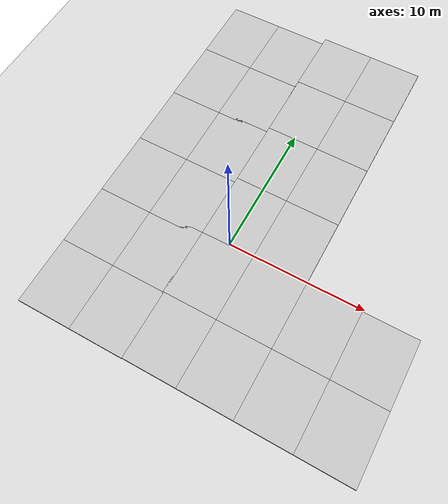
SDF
<sdf version="1.7">
 <world name="default">
  <model name="ground_plane">
   <static>1</static>
   <link name="link">
    <collision name="collision">
     <geometry><plane><normal>0 0 1</normal><size>100 100</size></plane></geometry>
     <surface><friction><ode><mu>100</mu><mu2>50</mu2></ode></friction></surface>
    </collision>
    <visual name="visual">
     <cast_shadows>0</cast_shadows>
     <geometry><plane><normal>0 0 1</normal><size>100 100</size></plane></geometry>
     <material>
      <script><uri>file://media/materials/scripts/gazebo.material</uri><name>Gazebo/Grey</name></script>
     </material>
    </visual>
   </link>
  </model>
  <model name="mud_box_0">
   <static>1</static>
   <link name="link">
    <collision name="collision"><geometry><box><size>8 10 0.2</size></box></geometry></collision>
    <visual name="visual_1">
     <pose>-2 2.5 0 0 -0 0</pose>
     <cast_shadows>0</cast_shadows>
     <geometry><box><size>4 5 0.2</size></box></geometry>
     <material>
      <script>
       <uri>model://mud_box/materials/scripts</uri>
       <uri>model://mud_box/materials/textures</uri>
       <name>vrc/mud</name>
      </script>
     </material>
    </visual>
    <visual name="visual_2">
     <pose>2 2.5 0 0 -0 0</pose>
     <cast_shadows>0</cast_shadows>
     <geometry><box><size>4 5 0.2</size></box></geometry>
     <material>
      <script>
       <uri>model://mud_box/materials/scripts</uri>
       <uri>model://mud_box/materials/textures</uri>
       <name>vrc/mud</name>
      </script>
     </material>
    </visual>
    <visual name="visual_3">
     <pose>2 -2.5 0 0 -0 0</pose>
     <cast_shadows>0</cast_shadows>
     <geometry><box><size>4 5 0.2</size></box></geometry>
     <material>
      <script>
       <uri>model://mud_box/materials/scripts</uri>
       <uri>model://mud_box/materials/textures</uri>
       <name>vrc/mud</name>
      </script>
     </material>
    </visual>
    <visual name="visual_4">
     <pose>-2 -2.5 0 0 -0 0</pose>
     <cast_shadows>0</cast_shadows>
     <geometry><box><size>4 5 0.2</size></box></geometry>
     <material>
      <script>
       <uri>model://mud_box/materials/scripts</uri>
       <uri>model://mud_box/materials/textures</uri>
       <name>vrc/mud</name>
      </script>
     </material>
    </visual>
   </link>
   <pose>1.86767 4.83104 0 0 -0 0</pose>
  </model>
  <model name="mud_box_2">
   <static>1</static>
   <link name="link">
    <collision name="collision"><geometry><box><size>8 10 0.2</size></box></geometry></collision>
    <visual name="visual_1">
     <pose>-2 2.5 0 0 -0 0</pose>
     <cast_shadows>0</cast_shadows>
     <geometry><box><size>4 5 0.2</size></box></geometry>
     <material>
      <script>
       <uri>model://mud_box/materials/scripts</uri>
       <uri>model://mud_box/materials/textures</uri>
       <name>vrc/mud</name>
      </script>
     </material>
    </visual>
    <visual name="visual_2">
     <pose>2 2.5 0 0 -0 0</pose>
     <cast_shadows>0</cast_shadows>
     <geometry><box><size>4 5 0.2</size></box></geometry>
     <material>
      <script>
       <uri>model://mud_box/materials/scripts</uri>
       <uri>model://mud_box/materials/textures</uri>
       <name>vrc/mud</name>
      </script>
     </material>
    </visual>
    <visual name="visual_3">
     <pose>2 -2.5 0 0 -0 0</pose>
     <cast_shadows>0</cast_shadows>
     <geometry><box><size>4 5 0.2</size></box></geometry>
     <material>
      <script>
       <uri>model://mud_box/materials/scripts</uri>
       <uri>model://mud_box/materials/textures</uri>
       <name>vrc/mud</name>
      </script>
     </material>
    </visual>
    <visual name="visual_4">
     <pose>-2 -2.5 0 0 -0 0</pose>
     <cast_shadows>0</cast_shadows>
     <geometry><box><size>4 5 0.2</size></box></geometry>
     <material>
      <script>
       <uri>model://mud_box/materials/scripts</uri>
       <uri>model://mud_box/materials/textures</uri>
       <name>vrc/mud</name>
      </script>
     </material>
    </visual>
   </link>
   <pose>1.85975 -5.14192 0 0 -0 0</pose>
  </model>
  <model name="mud_box_0_clone">
   <static>1</static>
   <link name="link">
    <collision name="collision"><geometry><box><size>8 10 0.2</size></box></geometry></collision>
    <visual name="visual_1">
     <pose>-2 2.5 0 0 -0 0</pose>
     <cast_shadows>0</cast_shadows>
     <geometry><box><size>4 5 0.2</size></box></geometry>
     <material>
      <script>
       <uri>model://mud_box/materials/scripts</uri>
       <uri>model://mud_box/materials/textures</uri>
       <name>vrc/mud</name>
      </script>
     </material>
    </visual>
    <visual name="visual_2">
     <pose>2 2.5 0 0 -0 0</pose>
     <cast_shadows>0</cast_shadows>
     <geometry><box><size>4 5 0.2</size></box></geometry>
     <material>
      <script>
       <uri>model://mud_box/materials/scripts</uri>
       <uri>model://mud_box/materials/textures</uri>
       <name>vrc/mud</name>
      </script>
     </material>
    </visual>
    <visual name="visual_3">
     <pose>2 -2.5 0 0 -0 0</pose>
     <cast_shadows>0</cast_shadows>
     <geometry><box><size>4 5 0.2</size></box></geometry>
     <material>
      <script>
       <uri>model://mud_box/materials/scripts</uri>
       <uri>model://mud_box/materials/textures</uri>
       <name>vrc/mud</name>
      </script>
     </material>
    </visual>
    <visual name="visual_4">
     <pose>-2 -2.5 0 0 -0 0</pose>
     <cast_shadows>0</cast_shadows>
     <geometry><box><size>4 5 0.2</size></box></geometry>
     <material>
      <script>
       <uri>model://mud_box/materials/scripts</uri>
       <uri>model://mud_box/materials/textures</uri>
       <name>vrc/mud</name>
      </script>
     </material>
    </visual>
   </link>
   <pose>9.85757 -5.14216 0 0 -0 0</pose>
  </model>
  <model name="mud_box_0_clone_clone_2">
   <static>1</static>
   <link name="link">
    <collision name="collision"><geometry><box><size>8 10 0.2</size></box></geometry></collision>
    <visual name="visual_1">
     <pose>-2 2.5 0 0 -0 0</pose>
     <cast_shadows>0</cast_shadows>
     <geometry><box><size>4 5 0.2</size></box></geometry>
     <material>
      <script>
       <uri>model://mud_box/materials/scripts</uri>
       <uri>model://mud_box/materials/textures</uri>
       <name>vrc/mud</name>
      </script>
     </material>
    </visual>
    <visual name="visual_2">
     <pose>2 2.5 0 0 -0 0</pose>
     <cast_shadows>0</cast_shadows>
     <geometry><box><size>4 5 0.2</size></box></geometry>
     <material>
      <script>
       <uri>model://mud_box/materials/scripts</uri>
       <uri>model://mud_box/materials/textures</uri>
       <name>vrc/mud</name>
      </script>
     </material>
    </visual>
    <visual name="visual_3">
     <pose>2 -2.5 0 0 -0 0</pose>
     <cast_shadows>0</cast_shadows>
     <geometry><box><size>4 5 0.2</size></box></geometry>
     <material>
      <script>
       <uri>model://mud_box/materials/scripts</uri>
       <uri>model://mud_box/materials/textures</uri>
       <name>vrc/mud</name>
      </script>
     </material>
    </visual>
    <visual name="visual_4">
     <pose>-2 -2.5 0 0 -0 0</pose>
     <cast_shadows>0</cast_shadows>
     <geometry><box><size>4 5 0.2</size></box></geometry>
     <material>
      <script>
       <uri>model://mud_box/materials/scripts</uri>
       <uri>model://mud_box/materials/textures</uri>
       <name>vrc/mud</name>
      </script>
     </material>
    </visual>
   </link>
   <pose>1.86503 14.8262 0 0 -0 0</pose>
  </model>
  <model name="mud_box_6">
   <static>1</static>
   <link name="link">
    <collision name="collision"><geometry><box><size>8 10 0.2</size></box></geometry></collision>
    <visual name="visual_1">
     <pose>-2 2.5 0 0 -0 0</pose>
     <cast_shadows>0</cast_shadows>
     <geometry><box><size>4 5 0.2</size></box></geometry>
     <material>
      <script>
       <uri>model://mud_box/materials/scripts</uri>
       <uri>model://mud_box/materials/textures</uri>
       <name>vrc/mud</name>
      </script>
     </material>
    </visual>
    <visual name="visual_2">
     <pose>2 2.5 0 0 -0 0</pose>
     <cast_shadows>0</cast_shadows>
     <geometry><box><size>4 5 0.2</size></box></geometry>
     <material>
      <script>
       <uri>model://mud_box/materials/scripts</uri>
       <uri>model://mud_box/materials/textures</uri>
       <name>vrc/mud</name>
      </script>
     </material>
    </visual>
    <visual name="visual_3">
     <pose>2 -2.5 0 0 -0 0</pose>
     <cast_shadows>0</cast_shadows>
     <geometry><box><size>4 5 0.2</size></box></geometry>
     <material>
      <script>
       <uri>model://mud_box/materials/scripts</uri>
       <uri>model://mud_box/materials/textures</uri>
       <name>vrc/mud</name>
      </script>
     </material>
    </visual>
    <visual name="visual_4">
     <pose>-2 -2.5 0 0 -0 0</pose>
     <cast_shadows>0</cast_shadows>
     <geometry><box><size>4 5 0.2</size></box></geometry>
     <material>
      <script>
       <uri>model://mud_box/materials/scripts</uri>
       <uri>model://mud_box/materials/textures</uri>
       <name>vrc/mud</name>
      </script>
     </material>
    </visual>
   </link>
   <pose>-6.05482 -5.16764 0 0 -0 0</pose>
  </model>
  <model name="mud_box_7">
   <static>1</static>
   <link name="link">
    <collision name="collision"><geometry><box><size>8 10 0.2</size></box></geometry></collision>
    <visual name="visual_1">
     <pose>-2 2.5 0 0 -0 0</pose>
     <cast_shadows>0</cast_shadows>
     <geometry><box><size>4 5 0.2</size></box></geometry>
     <material>
      <script>
       <uri>model://mud_box/materials/scripts</uri>
       <uri>model://mud_box/materials/textures</uri>
       <name>vrc/mud</name>
      </script>
     </material>
    </visual>
    <visual name="visual_2">
     <pose>2 2.5 0 0 -0 0</pose>
     <cast_shadows>0</cast_shadows>
     <geometry><box><size>4 5 0.2</size></box></geometry>
     <material>
      <script>
       <uri>model://mud_box/materials/scripts</uri>
       <uri>model://mud_box/materials/textures</uri>
       <name>vrc/mud</name>
      </script>
     </material>
    </visual>
    <visual name="visual_3">
     <pose>2 -2.5 0 0 -0 0</pose>
     <cast_shadows>0</cast_shadows>
     <geometry><box><size>4 5 0.2</size></box></geometry>
     <material>
      <script>
       <uri>model://mud_box/materials/scripts</uri>
       <uri>model://mud_box/materials/textures</uri>
       <name>vrc/mud</name>
      </script>
     </material>
    </visual>
    <visual name="visual_4">
     <pose>-2 -2.5 0 0 -0 0</pose>
     <cast_shadows>0</cast_shadows>
     <geometry><box><size>4 5 0.2</size></box></geometry>
     <material>
      <script>
       <uri>model://mud_box/materials/scripts</uri>
       <uri>model://mud_box/materials/textures</uri>
       <name>vrc/mud</name>
      </script>
     </material>
    </visual>
   </link>
   <pose>-6.06159 4.43389 0 0 -0 0</pose>
  </model>
  <model name="mud_box_8">
   <static>1</static>
   <link name="link">
    <collision name="collision"><geometry><box><size>8 10 0.2</size></box></geometry></collision>
    <visual name="visual_1">
     <pose>-2 2.5 0 0 -0 0</pose>
     <cast_shadows>0</cast_shadows>
     <geometry><box><size>4 5 0.2</size></box></geometry>
     <material>
      <script>
       <uri>model://mud_box/materials/scripts</uri>
       <uri>model://mud_box/materials/textures</uri>
       <name>vrc/mud</name>
      </script>
     </material>
    </visual>
    <visual name="visual_2">
     <pose>2 2.5 0 0 -0 0</pose>
     <cast_shadows>0</cast_shadows>
     <geometry><box><size>4 5 0.2</size></box></geometry>
     <material>
      <script>
       <uri>model://mud_box/materials/scripts</uri>
       <uri>model://mud_box/materials/textures</uri>
       <name>vrc/mud</name>
      </script>
     </material>
    </visual>
    <visual name="visual_3">
     <pose>2 -2.5 0 0 -0 0</pose>
     <cast_shadows>0</cast_shadows>
     <geometry><box><size>4 5 0.2</size></box></geometry>
     <material>
      <script>
       <uri>model://mud_box/materials/scripts</uri>
       <uri>model://mud_box/materials/textures</uri>
       <name>vrc/mud</name>
      </script>
     </material>
    </visual>
    <visual name="visual_4">
     <pose>-2 -2.5 0 0 -0 0</pose>
     <cast_shadows>0</cast_shadows>
     <geometry><box><size>4 5 0.2</size></box></geometry>
     <material>
      <script>
       <uri>model://mud_box/materials/scripts</uri>
       <uri>model://mud_box/materials/textures</uri>
       <name>vrc/mud</name>
      </script>
     </material>
    </visual>
   </link>
   <pose>-6.0855 14.2553 0 0 -0 0</pose>
  </model>
 </world>
</sdf>
